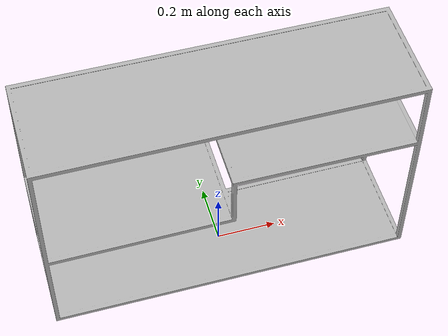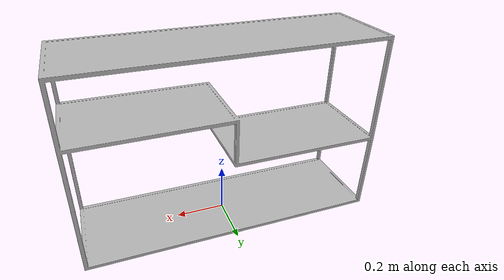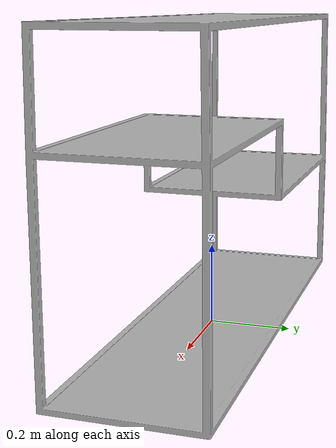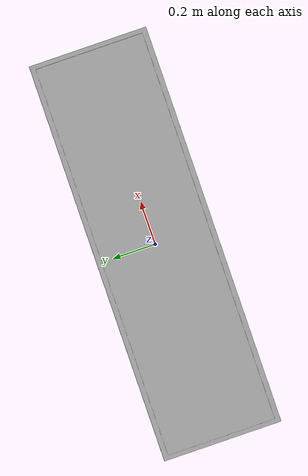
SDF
<sdf version="1.6">
	<model name="Bookcases_Of801682c0062_lod0">
		<link name="main_link">
			<visual name="visual_RootNode">
				<geometry>
					<mesh>
						<uri>model://Bookcases_Of801682c0062_lod0/meshes/visual_RootNode.dae</uri>
					</mesh>
				</geometry>
			</visual>
			<collision name="collision_RootNode_lod0_0">
				<geometry>
					<mesh>
						<uri>model://Bookcases_Of801682c0062_lod0/meshes/collision_RootNode_lod0_0.dae</uri>
					</mesh>
				</geometry>
			</collision>
		</link>
	</model>
</sdf>
